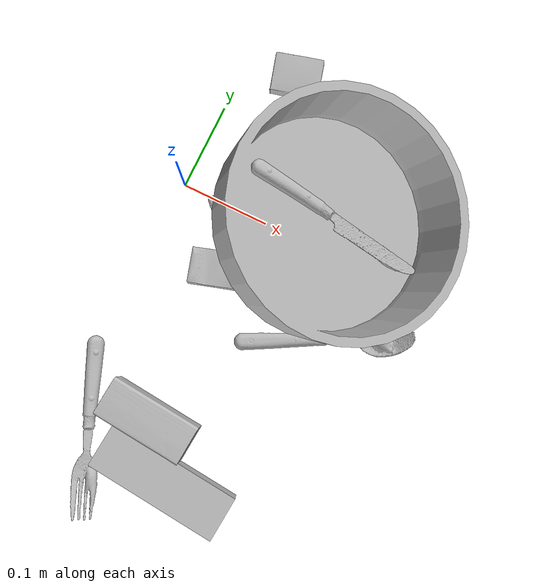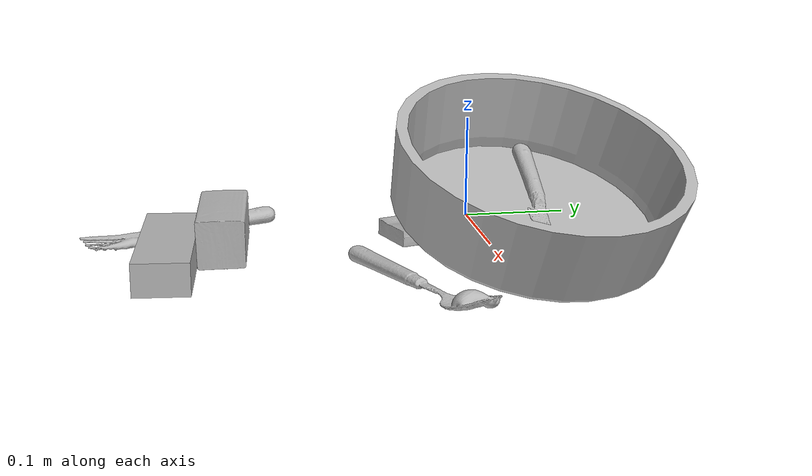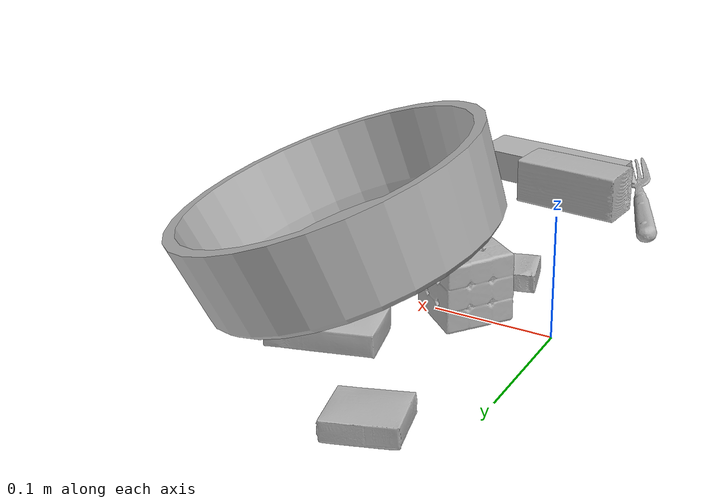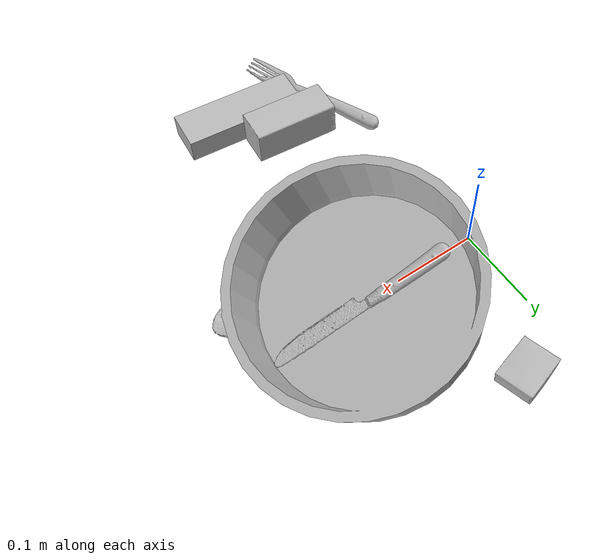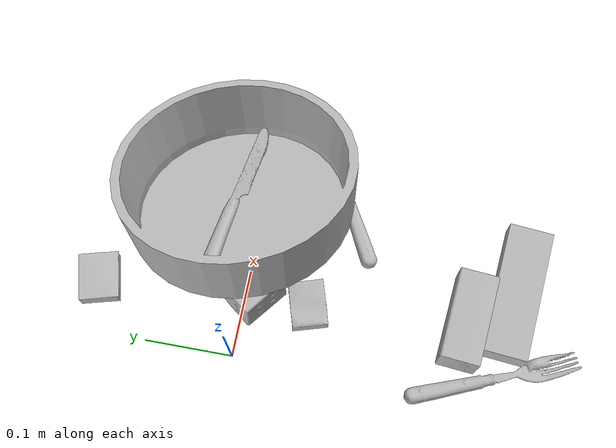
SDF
<sdf version="1.4">
  <world name="default">
    <light name="light1" type="point">
      <pose>0 0 1 0 0 0</pose>
      <diffuse>3 3 3 1</diffuse>
      <specular>3 3 3 1</specular>
    </light>
    <light name="light2" type="point">
      <pose>0 0.5 2 0 0 0</pose>
      <diffuse>1 1 1 1</diffuse>
      <specular>1 1 1 1</specular>
    </light>
    <light name="light3" type="point">
      <pose>0 0.5 2 0 0 0</pose>
      <diffuse>3 3 3 1</diffuse>
      <specular>3 3 3 1</specular>
    </light>
    <scene>
      <ambient>0.7 0.7 0.7</ambient>
    </scene>
    <model name="box11">
      <link name="link_box11">
        <collision name="default">
          <geometry>
            <mesh>
              <uri>model://cracker_box/collision_meshes/collision.obj</uri>
              <scale>0.25 0.25 0.25</scale>
            </mesh>
          </geometry>
          <surface>
            <friction>
              <ode>
                <mu>0.5</mu>
                <mu2>0.5</mu2>
              </ode>
            </friction>
          <contact>
        <ode>
            <max_vel>0</max_vel>
            <min_depth>0.0001</min_depth>
            <kp>1e8</kp>
        </ode>
    </contact></surface>
        </collision>
        <visual name="default">
          <geometry>
            <mesh>
              <uri>model://cracker_box/visual_meshes/visual.dae</uri>
              <scale>0.25 0.25 0.25</scale>
            </mesh>
          </geometry>
        </visual>
        <inertial>
          <mass>0.04448898881673813</mass>
          <pose>0.00023660270380787551 6.358561950037256e-05 -0.000425738311605528 -0.00031620780372907927 -0.011106488668730609 0.002546795468482302</pose>
          <inertia>
            <ixx>7.0725087e-06</ixx>
            <iyy>1.1678099e-05</iyy>
            <izz>1.666572e-05</izz>
            <ixy>0</ixy>
            <ixz>0</ixz>
            <iyz>0</iyz>
          </inertia>
        </inertial>
      </link>
      <pose>0.07128892093896866 -0.07173680514097214 0.009120452217757702 -0.011788116946376475 -0.007367134985649682 0.2890607943427924</pose>
    </model>
    <model name="box12">
      <link name="link_box12">
        <collision name="default">
          <geometry>
            <mesh>
              <uri>model://wood_block/collision_meshes/collision.obj</uri>
              <scale>0.5 0.5 0.5</scale>
            </mesh>
          </geometry>
          <surface>
            <friction>
              <ode>
                <mu>0.5</mu>
                <mu2>0.5</mu2>
              </ode>
            </friction>
          <contact>
        <ode>
            <max_vel>0</max_vel>
            <min_depth>0.0001</min_depth>
            <kp>1e8</kp>
        </ode>
    </contact></surface>
        </collision>
        <visual name="default">
          <geometry>
            <mesh>
              <uri>model://wood_block/visual_meshes/visual.dae</uri>
              <scale>0.5 0.5 0.5</scale>
            </mesh>
          </geometry>
        </visual>
        <inertial>
          <mass>0.30308207869529724</mass>
          <pose>-2.906657982748584e-06 -0.000285404734313488 0.00013204291462898254 -0.05220975528484064 -0.0051926956083073895 -0.006861380255216688</pose>
          <inertia>
            <ixx>0.00010139242</ixx>
            <iyy>0.00032029866</iyy>
            <izz>0.0003191006</izz>
            <ixy>0</ixy>
            <ixz>0</ixz>
            <iyz>0</iyz>
          </inertia>
        </inertial>
      </link>
      <pose>0.08190546929836273 -0.24851232767105103 0.022527214139699936 -0.01586244153452858 -0.0004134720367609884 3.052926158188337</pose>
    </model>
    <model name="box13">
      <link name="link_box13">
        <collision name="default">
          <geometry>
            <mesh>
              <uri>model://pudding_box/collision_meshes/collision.obj</uri>
              <scale>0.5 0.5 0.5</scale>
            </mesh>
          </geometry>
          <surface>
            <friction>
              <ode>
                <mu>0.5</mu>
                <mu2>0.5</mu2>
              </ode>
            </friction>
          <contact>
        <ode>
            <max_vel>0</max_vel>
            <min_depth>0.0001</min_depth>
            <kp>1e8</kp>
        </ode>
    </contact></surface>
        </collision>
        <visual name="default">
          <geometry>
            <mesh>
              <uri>model://pudding_box/visual_meshes/visual.dae</uri>
              <scale>0.5 0.5 0.5</scale>
            </mesh>
          </geometry>
        </visual>
        <inertial>
          <mass>0.06630203872919083</mass>
          <pose>0.00024474109522998333 0.00040339428232982755 -0.00025944141088984907 0.0052131027026664865 -0.006603797821229493 0.02007983447369903</pose>
          <inertia>
            <ixx>1.873776e-05</ixx>
            <iyy>1.2606899e-05</iyy>
            <izz>2.7671198e-05</izz>
            <ixy>0</ixy>
            <ixz>0</ixz>
            <iyz>0</iyz>
          </inertia>
        </inertial>
      </link>
      <pose>0.05950434133410454 0.16562935709953308 0.009862899780273438 0.02234859520131629 -0.011391628215544057 1.8435712284733234</pose>
    </model>
    <model name="box21">
      <link name="link_box21">
        <collision name="default">
          <geometry>
            <mesh>
              <uri>model://sugar_box/collision_meshes/collision.obj</uri>
              <scale>0.5 0.5 0.5</scale>
            </mesh>
          </geometry>
          <surface>
            <friction>
              <ode>
                <mu>0.5</mu>
                <mu2>0.5</mu2>
              </ode>
            </friction>
          <contact>
        <ode>
            <max_vel>0</max_vel>
            <min_depth>0.0001</min_depth>
            <kp>1e8</kp>
        </ode>
    </contact></surface>
        </collision>
        <visual name="default">
          <geometry>
            <mesh>
              <uri>model://sugar_box/visual_meshes/visual.dae</uri>
              <scale>0.5 0.5 0.5</scale>
            </mesh>
          </geometry>
        </visual>
        <inertial>
          <mass>0.09398066252470016</mass>
          <pose>0.0005171863595023751 1.924554817378521e-05 -0.00018182402709499002 -0.00040462650409139634 0.0010506636387973133 0.002615378555960767</pose>
          <inertia>
            <ixx>1.9576108e-05</ixx>
            <iyy>6.3274e-05</iyy>
            <izz>7.574653e-05</izz>
            <ixy>0</ixy>
            <ixz>0</ixz>
            <iyz>0</iyz>
          </inertia>
        </inertial>
      </link>
      <pose>0.14859677851200104 0.08065132796764374 0.011486604809761047 0.022777834057675892 -0.022549290916409493 -2.9040999424639207</pose>
    </model>
    <model name="box22">
      <link name="link_box22">
        <collision name="default">
          <geometry>
            <mesh>
              <uri>model://jenga/collision_meshes/collision.obj</uri>
              <scale>1.0 1.0 1.0</scale>
            </mesh>
          </geometry>
          <surface>
            <friction>
              <ode>
                <mu>0.5</mu>
                <mu2>0.5</mu2>
              </ode>
            </friction>
          <contact>
        <ode>
            <max_vel>0</max_vel>
            <min_depth>0.0001</min_depth>
            <kp>1e8</kp>
        </ode>
    </contact></surface>
        </collision>
        <visual name="default">
          <geometry>
            <mesh>
              <uri>model://jenga/visual_meshes/visual.dae</uri>
              <scale>1.0 1.0 1.0</scale>
            </mesh>
          </geometry>
        </visual>
        <inertial>
          <mass>0.2620435655117035</mass>
          <pose>-2.5028555228345795e-07 -0.0001025000965455547 -4.092339804628864e-05 0.0 -7.342154049184251e-07 0.0</pose>
          <inertia>
            <ixx>7.251381e-05</ixx>
            <iyy>0.0004913516</iyy>
            <izz>0.00052455964</izz>
            <ixy>0</ixy>
            <ixz>0</ixz>
            <iyz>0</iyz>
          </inertia>
        </inertial>
      </link>
      <pose>0.1239691898226738 -0.2991844415664673 0.014999998733401299 -4.2560517606084864e-11 6.8386816125748405e-09 -0.09096336884332981</pose>
    </model>
    <model name="box23">
      <link name="link_box23">
        <collision name="default">
          <geometry>
            <mesh>
              <uri>model://rubiks_cube/collision_meshes/collision.obj</uri>
              <scale>1.0 1.0 1.0</scale>
            </mesh>
          </geometry>
          <surface>
            <friction>
              <ode>
                <mu>0.5</mu>
                <mu2>0.5</mu2>
              </ode>
            </friction>
          <contact>
        <ode>
            <max_vel>0</max_vel>
            <min_depth>0.0001</min_depth>
            <kp>1e8</kp>
        </ode>
    </contact></surface>
        </collision>
        <visual name="default">
          <geometry>
            <mesh>
              <uri>model://rubiks_cube/visual_meshes/visual.dae</uri>
              <scale>1.0 1.0 1.0</scale>
            </mesh>
          </geometry>
        </visual>
        <inertial>
          <mass>0.1897622048854828</mass>
          <pose>2.6721043468569405e-05 5.256967051536776e-05 -7.264316082000732e-06 -0.054673156626660294 -0.09814014504853939 -0.034453657529750985</pose>
          <inertia>
            <ixx>0.00010485636</ixx>
            <iyy>0.00010436737</iyy>
            <izz>0.000105725274</izz>
            <ixy>0</ixy>
            <ixz>0</ixz>
            <iyz>0</iyz>
          </inertia>
        </inertial>
      </link>
      <pose>0.07686282694339752 -0.005669221747666597 0.028684360906481743 0.00025368689025877597 0.00010137191009826325 0.9435779953888858</pose>
    </model>
    <model name="plate1">
      <link name="link_plate1">
        <collision name="default">
          <geometry>
            <mesh>
              <uri>model://pan_tefal/collision_meshes/collision.obj</uri>
              <scale>1.0 1.0 1.0</scale>
            </mesh>
          </geometry>
          <surface>
            <friction>
              <ode>
                <mu>0.5</mu>
                <mu2>0.5</mu2>
              </ode>
            </friction>
          <contact>
        <ode>
            <max_vel>0</max_vel>
            <min_depth>0.0001</min_depth>
            <kp>1e8</kp>
        </ode>
    </contact></surface>
        </collision>
        <visual name="default">
          <geometry>
            <mesh>
              <uri>model://pan_tefal/visual_meshes/visual.dae</uri>
              <scale>1.0 1.0 1.0</scale>
            </mesh>
          </geometry>
        </visual>
        <inertial>
          <mass>0.8768928050994873</mass>
          <pose>-0.00018002584693022072 3.279091833974235e-05 -0.008514934219419956 0.0008190272128915226 -0.0003301349770144462 -0.3318573305948388</pose>
          <inertia>
            <ixx>0.0060531492</ixx>
            <iyy>0.006092174</iyy>
            <izz>0.011142679</izz>
            <ixy>0</ixy>
            <ixz>0</ixz>
            <iyz>0</iyz>
          </inertia>
        </inertial>
      </link>
      <pose>0.1701555848121643 0.02330409362912178 0.07634420692920685 -0.020170511556109785 -0.34386011296007896 -2.7231745149982753</pose>
    </model>
    <model name="silverware1">
      <link name="link_silverware1">
        <collision name="default">
          <geometry>
            <mesh>
              <uri>model://spoon/collision_meshes/collision.obj</uri>
              <scale>1.0 1.0 1.0</scale>
            </mesh>
          </geometry>
          <surface>
            <friction>
              <ode>
                <mu>0.5</mu>
                <mu2>0.5</mu2>
              </ode>
            </friction>
          <contact>
        <ode>
            <max_vel>0</max_vel>
            <min_depth>0.0001</min_depth>
            <kp>1e8</kp>
        </ode>
    </contact></surface>
        </collision>
        <visual name="default">
          <geometry>
            <mesh>
              <uri>model://spoon/visual_meshes/visual.dae</uri>
              <scale>1.0 1.0 1.0</scale>
            </mesh>
          </geometry>
        </visual>
        <inertial>
          <mass>0.030811671167612076</mass>
          <pose>-0.005526314955204725 -0.0016034170985221863 -0.0007271655485965312 0.03521832474385929 -0.03906585488360169 0.0061506134218646934</pose>
          <inertia>
            <ixx>1.713795e-06</ixx>
            <iyy>0.000117237374</iyy>
            <izz>0.00011808256</izz>
            <ixy>0</ixy>
            <ixz>0</ixz>
            <iyz>0</iyz>
          </inertia>
        </inertial>
      </link>
      <pose>0.2139129638671875 -0.08724460005760193 0.008385264314711094 0.006731738911302673 0.02689300477102173 0.4742407749804595</pose>
    </model>
    <model name="silverware2">
      <link name="link_silverware2">
        <collision name="default">
          <geometry>
            <mesh>
              <uri>model://fork/collision_meshes/collision.obj</uri>
              <scale>1.0 1.0 1.0</scale>
            </mesh>
          </geometry>
          <surface>
            <friction>
              <ode>
                <mu>0.5</mu>
                <mu2>0.5</mu2>
              </ode>
            </friction>
          <contact>
        <ode>
            <max_vel>0</max_vel>
            <min_depth>0.0001</min_depth>
            <kp>1e8</kp>
        </ode>
    </contact></surface>
        </collision>
        <visual name="default">
          <geometry>
            <mesh>
              <uri>model://fork/visual_meshes/visual.dae</uri>
              <scale>1.0 1.0 1.0</scale>
            </mesh>
          </geometry>
        </visual>
        <inertial>
          <mass>0.016358599066734314</mass>
          <pose>-0.029570044949650764 0.00046588238910771906 0.0003218862693756819 -0.013550710307666105 -0.010977838412833367 0.014453905587424366</pose>
          <inertia>
            <ixx>5.7346136e-07</ixx>
            <iyy>4.270759e-05</iyy>
            <izz>4.29641e-05</izz>
            <ixy>0</ixy>
            <ixz>0</ixz>
            <iyz>0</iyz>
          </inertia>
        </inertial>
      </link>
      <pose>0.025398749858140945 -0.28511789441108704 0.005696463398635387 -0.17756208925658648 0.025427849010337004 -1.189693839451846</pose>
    </model>
    <model name="silverware3">
      <link name="link_silverware3">
        <collision name="default">
          <geometry>
            <mesh>
              <uri>model://knife/collision_meshes/collision.obj</uri>
              <scale>1.0 1.0 1.0</scale>
            </mesh>
          </geometry>
          <surface>
            <friction>
              <ode>
                <mu>0.5</mu>
                <mu2>0.5</mu2>
              </ode>
            </friction>
          <contact>
        <ode>
            <max_vel>0</max_vel>
            <min_depth>0.0001</min_depth>
            <kp>1e8</kp>
        </ode>
    </contact></surface>
        </collision>
        <visual name="default">
          <geometry>
            <mesh>
              <uri>model://knife/visual_meshes/visual.dae</uri>
              <scale>1.0 1.0 1.0</scale>
            </mesh>
          </geometry>
        </visual>
        <inertial>
          <mass>0.02715744450688362</mass>
          <pose>-0.023785259574651718 0.0015275124460458755 5.062024501967244e-05 0.07304743927496513 0.01724841757037888 -0.007409820832494391</pose>
          <inertia>
            <ixx>7.708383e-07</ixx>
            <iyy>0.00010433449</iyy>
            <izz>0.00010458276</izz>
            <ixy>0</ixy>
            <ixz>0</ixz>
            <iyz>0</iyz>
          </inertia>
        </inertial>
      </link>
      <pose>0.16891565918922424 0.024953849613666534 0.0526936911046505 -0.3278909727900287 0.3002665419621072 -0.09629637455118144</pose>
    </model>
  <physics type="ode">
      <max_contacts>50</max_contacts>
      <ode>
        <solver>
          <type>quick</type>
          <iters>75</iters>
        </solver>
        <constraints>
          <contact_max_correcting_vel>0</contact_max_correcting_vel>
          <contact_surface_layer>0</contact_surface_layer>
        </constraints>
      </ode>
    </physics></world>
</sdf>
